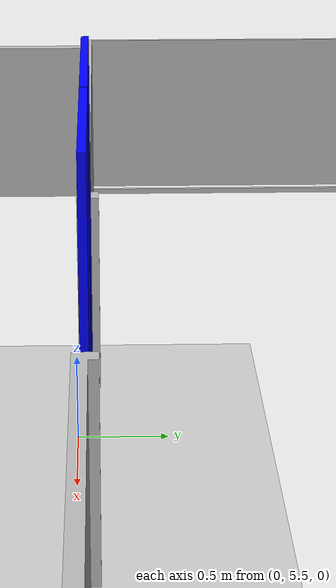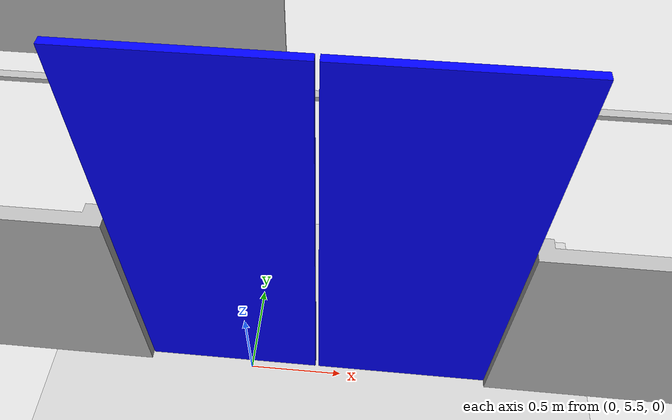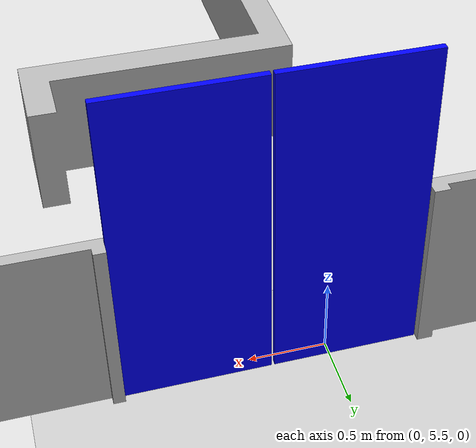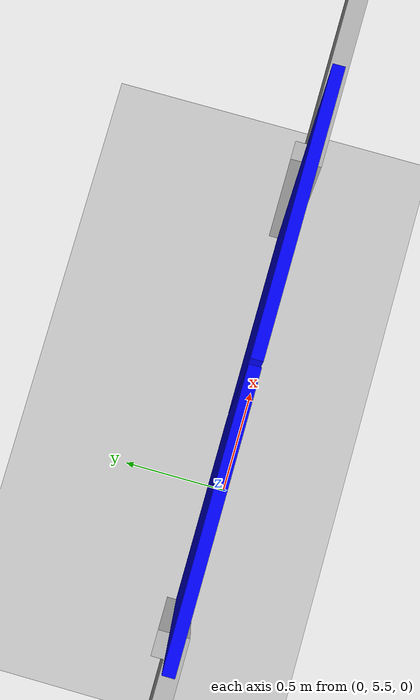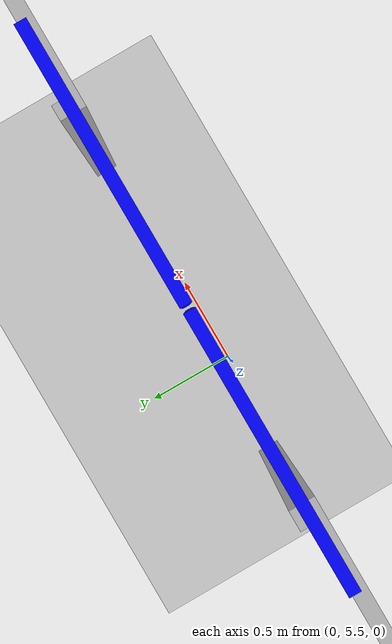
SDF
<?xml version="1.0"?>
<sdf version="1.6">
  <world name="robotics_testlabs/r5cop">
    <light name="sun" type="directional">
      <direction>0.5 0.1 -0.9</direction>
      <pose>0 0 10 0 0 0</pose>
      <specular>0.2 0.2 0.2 1</specular>
      <cast_shadows>true</cast_shadows>
      <diffuse>0.8 0.8 0.8 1</diffuse>
      <attenuation>
        <range>1000</range>
        <quadratic>0.001</quadratic>
        <constant>0.9</constant>
        <linear>0.01</linear>
      </attenuation>
    </light>
    <model name="livingroom" type="room">
      <link name="in">
        <virtual_volume name="in_vv">
          <geometry>
            <box>
              <size>2.5 3.6 0</size>
            </box>
          </geometry>
          <pose>-0.15 -0.1 0.0 0 0 0</pose>
        </virtual_volume>
      </link>
      <pose>1.5 1.0 0.0 0 0 0</pose>
      <static>true</static>
    </model>
    <model name="kitchen" type="room">
      <link name="in">
        <virtual_volume name="in_vv">
          <geometry>
            <box>
              <size>1.2 1.3 0</size>
            </box>
          </geometry>
          <pose>0.2 -0.15 0.0 0 0 0</pose>
        </virtual_volume>
      </link>
      <pose>2.2 4.5 0.0 0 0 0</pose>
      <static>true</static>
    </model>
    <model name="bedroom" type="room">
      <link name="in">
        <virtual_volume name="in_vv">
          <geometry>
            <box>
              <size>1.5 1.2 0</size>
            </box>
          </geometry>
          <pose>0.55 0.1 0.0 0 0 0</pose>
        </virtual_volume>
      </link>
      <pose>-2.0 -0.5 0.0 0 0 0</pose>
      <static>true</static>
    </model>
    <model name="workshop" type="room">
      <link name="in">
        <virtual_volume name="in_vv">
          <geometry>
            <box>
              <size>2.0 3.8 0</size>
            </box>
          </geometry>
          <pose>0.2 0.1 0.0 0 0 0</pose>
        </virtual_volume>
      </link>
      <pose>-2.0 3.0 0.0 0 0 0</pose>
      <static>true</static>
    </model>
    <model name="hallway" type="room">
      <link name="in">
        <virtual_volume name="in_vv">
          <geometry>
            <box>
              <size>1.6 1.8 0</size>
            </box>
          </geometry>
          <pose>0.3 -0.1 0.0 0 0 0</pose>
        </virtual_volume>
      </link>
      <pose>0.0 4.5 0.0 0 0 0</pose>
      <static>true</static>
    </model>
    <include>
      <pose>0 0 0 0 0 0</pose>
      <name>walls</name>
      <uri>model://robotics_testlabs/walls</uri>
    </include>
    <include>
      <pose>-0.58 5.585 0 0 0 -1.57079632679</pose>
      <name>door1</name>
      <uri>model://robotics_testlabs/blue_door_left</uri>
    </include>
    <include>
      <pose>1.31 5.585 0 0 0 -1.57079632679</pose>
      <name>door2</name>
      <uri>model://robotics_testlabs/blue_door_right</uri>
    </include>
    <include>
      <pose>0 0 0 0 0 0</pose>
      <name>floor</name>
      <uri>model://ground_plane</uri>
    </include>
    <physics type="ode">
      <real_time_update_rate>333.0</real_time_update_rate>
      <max_step_size>0.003</max_step_size>
      <ode>
        <constraints>
          <cfm>0.0001</cfm>
        </constraints>
        <solver>
          <type>quick</type>
          <iters>100</iters>
        </solver>
      </ode>
    </physics>
  </world>
</sdf>

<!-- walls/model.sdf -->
<sdf version="1.6">
  <model name="robotics_testlabs/walls">
    <link name="1_link">
      <collision name="1_col">
        <geometry>
          <mesh>
            <uri>model://robotics_testlabs/walls/shape/heightmap.stl</uri>
          </mesh>
        </geometry>
      </collision>
      <visual name="1_vis">
        <geometry>
          <mesh>
            <uri>model://robotics_testlabs/walls/shape/heightmap.stl</uri>
          </mesh>
        </geometry>
      </visual>
      <pose>0 0 0 0 0 0</pose>
    </link>
    <static>true</static>
  </model>
</sdf>

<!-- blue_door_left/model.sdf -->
<sdf version="1.6">
  <model name="robotics_testlabs/blue_door_left">
    <link name="1_link">
      <collision name="1_col">
        <geometry>
          <box>
            <size>0.04 0.926 2.12</size>
          </box>
        </geometry>
      </collision>
      <visual name="1_vis">
        <geometry>
          <box>
            <size>0.04 0.926 2.12</size>
          </box>
        </geometry>
        <material>
          <ambient>0 0 1 1</ambient>
        </material>
      </visual>
      <pose>0.025 0.473 1.06 0 0 0</pose>
    </link>
    <static>true</static>
  </model>
</sdf>

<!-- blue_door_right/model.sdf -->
<sdf version="1.6">
  <model name="robotics_testlabs/blue_door_right">
    <link name="1_link">
      <collision name="1_col">
        <geometry>
          <box>
            <size>0.04 0.926 2.12</size>
          </box>
        </geometry>
      </collision>
      <visual name="1_vis">
        <geometry>
          <box>
            <size>0.04 0.926 2.12</size>
          </box>
        </geometry>
        <material>
          <ambient>0 0 1 1</ambient>
        </material>
      </visual>
      <pose>0.025 -0.473 1.06 0 0 0</pose>
    </link>
    <static>true</static>
  </model>
</sdf>
